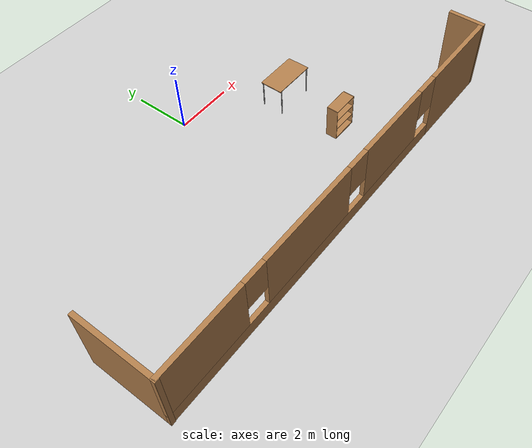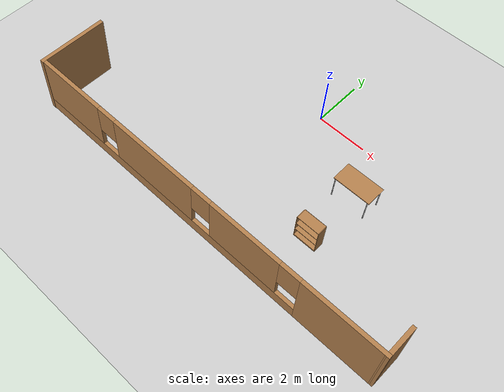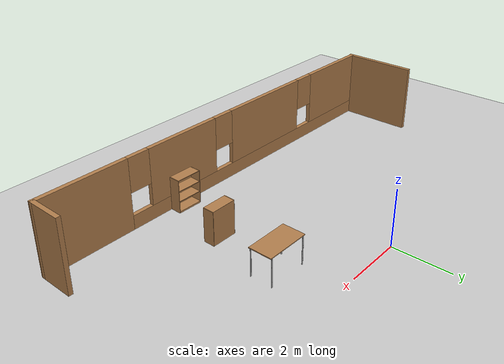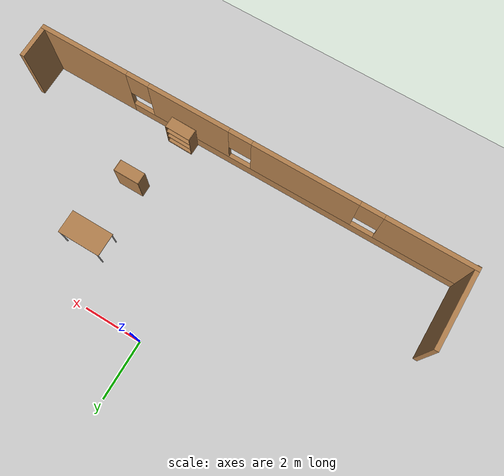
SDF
<sdf version="1.6">
 <world name="default">
  <model name="ground_plane">
   <static>1</static>
   <link name="link">
    <collision name="collision">
     <geometry><plane><normal>0 0 1</normal><size>100 100</size></plane></geometry>
     <surface>
      <contact><collide_bitmask>65535</collide_bitmask></contact>
      <friction><ode><mu>100</mu><mu2>50</mu2></ode></friction>
     </surface>
    </collision>
    <visual name="visual">
     <cast_shadows>0</cast_shadows>
     <geometry><plane><normal>0 0 1</normal><size>100 100</size></plane></geometry>
     <material>
      <script><uri>file://media/materials/scripts/gazebo.material</uri><name>Gazebo/Grey</name></script>
     </material>
    </visual>
   </link>
  </model>
  <model name="test2">
   <pose>0.00355 -5.2502 0 0 -0 0</pose>
   <link name="Wall_10">
    <collision name="Wall_10_Collision">
     <geometry><box><size>1.25 0.15 2.5</size></box></geometry>
     <pose>0 0 1.25 0 -0 0</pose>
    </collision>
    <visual name="Wall_10_Visual">
     <pose>0 0 1.25 0 -0 0</pose>
     <geometry><box><size>1.25 0.15 2.5</size></box></geometry>
     <material>
      <script><uri>file://media/materials/scripts/gazebo.material</uri><name>Gazebo/Wood</name></script>
      <ambient>1 1 1 1</ambient>
     </material>
     <meta><layer>0</layer></meta>
    </visual>
    <pose>7.50104 -0.74334 0 0 -0 1.5708</pose>
   </link>
   <link name="Wall_6">
    <pose>0 -1.28906 0 0 -0 3.14102</pose>
    <visual name="Wall_6_Visual_0">
     <pose>-5.98072 0 1.25 0 -0 0</pose>
     <geometry><box><size>3.19069 0.15 2.5</size></box></geometry>
     <material>
      <script><uri>file://media/materials/scripts/gazebo.material</uri><name>Gazebo/Wood</name></script>
      <ambient>1 1 1 1</ambient>
     </material>
     <meta><layer>0</layer></meta>
    </visual>
    <collision name="Wall_6_Collision_0">
     <geometry><box><size>3.19069 0.15 2.5</size></box></geometry>
     <pose>-5.98072 0 1.25 0 -0 0</pose>
    </collision>
    <visual name="Wall_6_Visual_1">
     <pose>1.59535 0 0.25 0 -0 0</pose>
     <geometry><box><size>11.9614 0.15 0.5</size></box></geometry>
     <material>
      <script><uri>file://media/materials/scripts/gazebo.material</uri><name>Gazebo/Wood</name></script>
      <ambient>1 1 1 1</ambient>
     </material>
     <meta><layer>0</layer></meta>
    </visual>
    <collision name="Wall_6_Collision_1">
     <geometry><box><size>11.9614 0.15 0.5</size></box></geometry>
     <pose>1.59535 0 0.25 0 -0 0</pose>
    </collision>
    <visual name="Wall_6_Visual_2">
     <pose>-2.14508 0 1.5 0 -0 0</pose>
     <geometry><box><size>2.88059 0.15 2</size></box></geometry>
     <material>
      <script><uri>file://media/materials/scripts/gazebo.material</uri><name>Gazebo/Wood</name></script>
      <ambient>1 1 1 1</ambient>
     </material>
     <meta><layer>0</layer></meta>
    </visual>
    <collision name="Wall_6_Collision_2">
     <geometry><box><size>2.88059 0.15 2</size></box></geometry>
     <pose>-2.14508 0 1.5 0 -0 0</pose>
    </collision>
    <visual name="Wall_6_Visual_3">
     <pose>1.92326 0 1.5 0 -0 0</pose>
     <geometry><box><size>3.65609 0.15 2</size></box></geometry>
     <material>
      <script><uri>file://media/materials/scripts/gazebo.material</uri><name>Gazebo/Wood</name></script>
      <ambient>1 1 1 1</ambient>
     </material>
     <meta><layer>0</layer></meta>
    </visual>
    <collision name="Wall_6_Collision_3">
     <geometry><box><size>3.65609 0.15 2</size></box></geometry>
     <pose>1.92326 0 1.5 0 -0 0</pose>
    </collision>
    <visual name="Wall_6_Visual_4">
     <pose>6.06369 0 1.5 0 -0 0</pose>
     <geometry><box><size>3.02476 0.15 2</size></box></geometry>
     <material>
      <script><uri>file://media/materials/scripts/gazebo.material</uri><name>Gazebo/Wood</name></script>
      <ambient>1 1 1 1</ambient>
     </material>
     <meta><layer>0</layer></meta>
    </visual>
    <collision name="Wall_6_Collision_4">
     <geometry><box><size>3.02476 0.15 2</size></box></geometry>
     <pose>6.06369 0 1.5 0 -0 0</pose>
    </collision>
    <visual name="Wall_6_Visual_5">
     <pose>-3.98538 0 1.9 0 -0 0</pose>
     <geometry><box><size>0.8 0.15 1.2</size></box></geometry>
     <material>
      <script><uri>file://media/materials/scripts/gazebo.material</uri><name>Gazebo/Wood</name></script>
      <ambient>1 1 1 1</ambient>
     </material>
     <meta><layer>0</layer></meta>
    </visual>
    <collision name="Wall_6_Collision_5">
     <geometry><box><size>0.8 0.15 1.2</size></box></geometry>
     <pose>-3.98538 0 1.9 0 -0 0</pose>
    </collision>
    <visual name="Wall_6_Visual_6">
     <pose>-0.304791 0 1.9 0 -0 0</pose>
     <geometry><box><size>0.8 0.15 1.2</size></box></geometry>
     <material>
      <script><uri>file://media/materials/scripts/gazebo.material</uri><name>Gazebo/Wood</name></script>
      <ambient>1 1 1 1</ambient>
     </material>
     <meta><layer>0</layer></meta>
    </visual>
    <collision name="Wall_6_Collision_6">
     <geometry><box><size>0.8 0.15 1.2</size></box></geometry>
     <pose>-0.304791 0 1.9 0 -0 0</pose>
    </collision>
    <visual name="Wall_6_Visual_7">
     <pose>4.1513 0 1.9 0 -0 0</pose>
     <geometry><box><size>0.8 0.15 1.2</size></box></geometry>
     <material>
      <script><uri>file://media/materials/scripts/gazebo.material</uri><name>Gazebo/Wood</name></script>
      <ambient>1 1 1 1</ambient>
     </material>
     <meta><layer>0</layer></meta>
    </visual>
    <collision name="Wall_6_Collision_7">
     <geometry><box><size>0.8 0.15 1.2</size></box></geometry>
     <pose>4.1513 0 1.9 0 -0 0</pose>
    </collision>
   </link>
   <link name="Wall_8">
    <collision name="Wall_8_Collision">
     <geometry><box><size>2.75 0.15 2.5</size></box></geometry>
     <pose>0 0 1.25 0 -0 0</pose>
    </collision>
    <visual name="Wall_8_Visual">
     <pose>0 0 1.25 0 -0 0</pose>
     <geometry><box><size>2.75 0.15 2.5</size></box></geometry>
     <material>
      <script><uri>file://media/materials/scripts/gazebo.material</uri><name>Gazebo/Wood</name></script>
      <ambient>1 1 1 1</ambient>
     </material>
     <meta><layer>0</layer></meta>
    </visual>
    <pose>-7.50104 0 0 0 -0 1.5708</pose>
   </link>
   <static>1</static>
  </model>
  <model name="table">
   <static>1</static>
   <link name="link">
    <collision name="surface">
     <pose>0 0 1 0 -0 0</pose>
     <geometry><box><size>1.5 0.8 0.03</size></box></geometry>
     <surface><friction><ode><mu>0.6</mu><mu2>0.6</mu2></ode></friction></surface>
    </collision>
    <visual name="visual1">
     <pose>0 0 1 0 -0 0</pose>
     <geometry><box><size>1.5 0.8 0.03</size></box></geometry>
     <material>
      <script><uri>file://media/materials/scripts/gazebo.material</uri><name>Gazebo/Wood</name></script>
     </material>
    </visual>
    <collision name="front_left_leg">
     <pose>0.68 0.38 0.5 0 -0 0</pose>
     <geometry><cylinder><radius>0.02</radius><length>1</length></cylinder></geometry>
    </collision>
    <visual name="front_left_leg">
     <pose>0.68 0.38 0.5 0 -0 0</pose>
     <geometry><cylinder><radius>0.02</radius><length>1</length></cylinder></geometry>
     <material>
      <script><uri>file://media/materials/scripts/gazebo.material</uri><name>Gazebo/Grey</name></script>
     </material>
    </visual>
    <collision name="front_right_leg">
     <pose>0.68 -0.38 0.5 0 -0 0</pose>
     <geometry><cylinder><radius>0.02</radius><length>1</length></cylinder></geometry>
    </collision>
    <visual name="front_right_leg">
     <pose>0.68 -0.38 0.5 0 -0 0</pose>
     <geometry><cylinder><radius>0.02</radius><length>1</length></cylinder></geometry>
     <material>
      <script><uri>file://media/materials/scripts/gazebo.material</uri><name>Gazebo/Grey</name></script>
     </material>
    </visual>
    <collision name="back_right_leg">
     <pose>-0.68 -0.38 0.5 0 -0 0</pose>
     <geometry><cylinder><radius>0.02</radius><length>1</length></cylinder></geometry>
    </collision>
    <visual name="back_right_leg">
     <pose>-0.68 -0.38 0.5 0 -0 0</pose>
     <geometry><cylinder><radius>0.02</radius><length>1</length></cylinder></geometry>
     <material>
      <script><uri>file://media/materials/scripts/gazebo.material</uri><name>Gazebo/Grey</name></script>
     </material>
    </visual>
    <collision name="back_left_leg">
     <pose>-0.68 0.38 0.5 0 -0 0</pose>
     <geometry><cylinder><radius>0.02</radius><length>1</length></cylinder></geometry>
    </collision>
    <visual name="back_left_leg">
     <pose>-0.68 0.38 0.5 0 -0 0</pose>
     <geometry><cylinder><radius>0.02</radius><length>1</length></cylinder></geometry>
     <material>
      <script><uri>file://media/materials/scripts/gazebo.material</uri><name>Gazebo/Grey</name></script>
     </material>
    </visual>
   </link>
   <pose>3.07176 -1.8755 0 0 -0 0</pose>
  </model>
  <model name="bookshelf_3">
   <static>1</static>
   <link name="link">
    <inertial><mass>1</mass></inertial>
    <collision name="back">
     <pose>0 0.005 0.6 0 -0 0</pose>
     <geometry><box><size>0.9 0.01 1.2</size></box></geometry>
    </collision>
    <visual name="visual1">
     <pose>0 0.005 0.6 0 -0 0</pose>
     <geometry><box><size>0.9 0.01 1.2</size></box></geometry>
     <material>
      <script><uri>file://media/materials/scripts/gazebo.material</uri><name>Gazebo/Wood</name></script>
     </material>
    </visual>
    <collision name="left_side">
     <pose>0.45 -0.195 0.6 0 -0 0</pose>
     <geometry><box><size>0.02 0.4 1.2</size></box></geometry>
    </collision>
    <visual name="visual2">
     <pose>0.45 -0.195 0.6 0 -0 0</pose>
     <geometry><box><size>0.02 0.4 1.2</size></box></geometry>
     <material>
      <script><uri>file://media/materials/scripts/gazebo.material</uri><name>Gazebo/Wood</name></script>
     </material>
    </visual>
    <collision name="right_side">
     <pose>-0.45 -0.195 0.6 0 -0 0</pose>
     <geometry><box><size>0.02 0.4 1.2</size></box></geometry>
    </collision>
    <visual name="visual3">
     <pose>-0.45 -0.195 0.6 0 -0 0</pose>
     <geometry><box><size>0.02 0.4 1.2</size></box></geometry>
     <material>
      <script><uri>file://media/materials/scripts/gazebo.material</uri><name>Gazebo/Wood</name></script>
     </material>
    </visual>
    <collision name="bottom">
     <pose>0 -0.195 0.03 0 -0 0</pose>
     <geometry><box><size>0.88 0.4 0.06</size></box></geometry>
    </collision>
    <visual name="visual4">
     <pose>0 -0.195 0.03 0 -0 0</pose>
     <geometry><box><size>0.88 0.4 0.06</size></box></geometry>
     <material>
      <script><uri>file://media/materials/scripts/gazebo.material</uri><name>Gazebo/Wood</name></script>
     </material>
    </visual>
    <collision name="top">
     <pose>0 -0.195 1.19 0 -0 0</pose>
     <geometry><box><size>0.88 0.4 0.02</size></box></geometry>
    </collision>
    <visual name="visual5">
     <pose>0 -0.195 1.19 0 -0 0</pose>
     <geometry><box><size>0.88 0.4 0.02</size></box></geometry>
     <material>
      <script><uri>file://media/materials/scripts/gazebo.material</uri><name>Gazebo/Wood</name></script>
     </material>
    </visual>
    <collision name="low_shelf">
     <pose>0 -0.195 0.43 0 -0 0</pose>
     <geometry><box><size>0.88 0.4 0.02</size></box></geometry>
    </collision>
    <visual name="visual6">
     <pose>0 -0.195 0.43 0 -0 0</pose>
     <geometry><box><size>0.88 0.4 0.02</size></box></geometry>
     <material>
      <script><uri>file://media/materials/scripts/gazebo.material</uri><name>Gazebo/Wood</name></script>
     </material>
    </visual>
    <collision name="high_shelf">
     <pose>0 -0.195 0.8 0 -0 0</pose>
     <geometry><box><size>0.88 0.4 0.02</size></box></geometry>
    </collision>
    <visual name="visual7">
     <pose>0 -0.195 0.8 0 -0 0</pose>
     <geometry><box><size>0.88 0.4 0.02</size></box></geometry>
     <material>
      <script><uri>file://media/materials/scripts/gazebo.material</uri><name>Gazebo/Wood</name></script>
     </material>
    </visual>
   </link>
   <pose>2.9653 -4.00032 0 0 -0 0</pose>
  </model>
  <model name="bookshelf_8">
   <static>1</static>
   <link name="link">
    <inertial><mass>1</mass></inertial>
    <collision name="back">
     <pose>0 0.005 0.6 0 -0 0</pose>
     <geometry><box><size>0.9 0.01 1.2</size></box></geometry>
    </collision>
    <visual name="visual1">
     <pose>0 0.005 0.6 0 -0 0</pose>
     <geometry><box><size>0.9 0.01 1.2</size></box></geometry>
     <material>
      <script><uri>file://media/materials/scripts/gazebo.material</uri><name>Gazebo/Wood</name></script>
     </material>
    </visual>
    <collision name="left_side">
     <pose>0.45 -0.195 0.6 0 -0 0</pose>
     <geometry><box><size>0.02 0.4 1.2</size></box></geometry>
    </collision>
    <visual name="visual2">
     <pose>0.45 -0.195 0.6 0 -0 0</pose>
     <geometry><box><size>0.02 0.4 1.2</size></box></geometry>
     <material>
      <script><uri>file://media/materials/scripts/gazebo.material</uri><name>Gazebo/Wood</name></script>
     </material>
    </visual>
    <collision name="right_side">
     <pose>-0.45 -0.195 0.6 0 -0 0</pose>
     <geometry><box><size>0.02 0.4 1.2</size></box></geometry>
    </collision>
    <visual name="visual3">
     <pose>-0.45 -0.195 0.6 0 -0 0</pose>
     <geometry><box><size>0.02 0.4 1.2</size></box></geometry>
     <material>
      <script><uri>file://media/materials/scripts/gazebo.material</uri><name>Gazebo/Wood</name></script>
     </material>
    </visual>
    <collision name="bottom">
     <pose>0 -0.195 0.03 0 -0 0</pose>
     <geometry><box><size>0.88 0.4 0.06</size></box></geometry>
    </collision>
    <visual name="visual4">
     <pose>0 -0.195 0.03 0 -0 0</pose>
     <geometry><box><size>0.88 0.4 0.06</size></box></geometry>
     <material>
      <script><uri>file://media/materials/scripts/gazebo.material</uri><name>Gazebo/Wood</name></script>
     </material>
    </visual>
    <collision name="top">
     <pose>0 -0.195 1.19 0 -0 0</pose>
     <geometry><box><size>0.88 0.4 0.02</size></box></geometry>
    </collision>
    <visual name="visual5">
     <pose>0 -0.195 1.19 0 -0 0</pose>
     <geometry><box><size>0.88 0.4 0.02</size></box></geometry>
     <material>
      <script><uri>file://media/materials/scripts/gazebo.material</uri><name>Gazebo/Wood</name></script>
     </material>
    </visual>
    <collision name="low_shelf">
     <pose>0 -0.195 0.43 0 -0 0</pose>
     <geometry><box><size>0.88 0.4 0.02</size></box></geometry>
    </collision>
    <visual name="visual6">
     <pose>0 -0.195 0.43 0 -0 0</pose>
     <geometry><box><size>0.88 0.4 0.02</size></box></geometry>
     <material>
      <script><uri>file://media/materials/scripts/gazebo.material</uri><name>Gazebo/Wood</name></script>
     </material>
    </visual>
    <collision name="high_shelf">
     <pose>0 -0.195 0.8 0 -0 0</pose>
     <geometry><box><size>0.88 0.4 0.02</size></box></geometry>
    </collision>
    <visual name="visual7">
     <pose>0 -0.195 0.8 0 -0 0</pose>
     <geometry><box><size>0.88 0.4 0.02</size></box></geometry>
     <material>
      <script><uri>file://media/materials/scripts/gazebo.material</uri><name>Gazebo/Wood</name></script>
     </material>
    </visual>
   </link>
   <pose>2.3828 -6.45627 0 0 -0 3.12226</pose>
  </model>
 </world>
</sdf>
